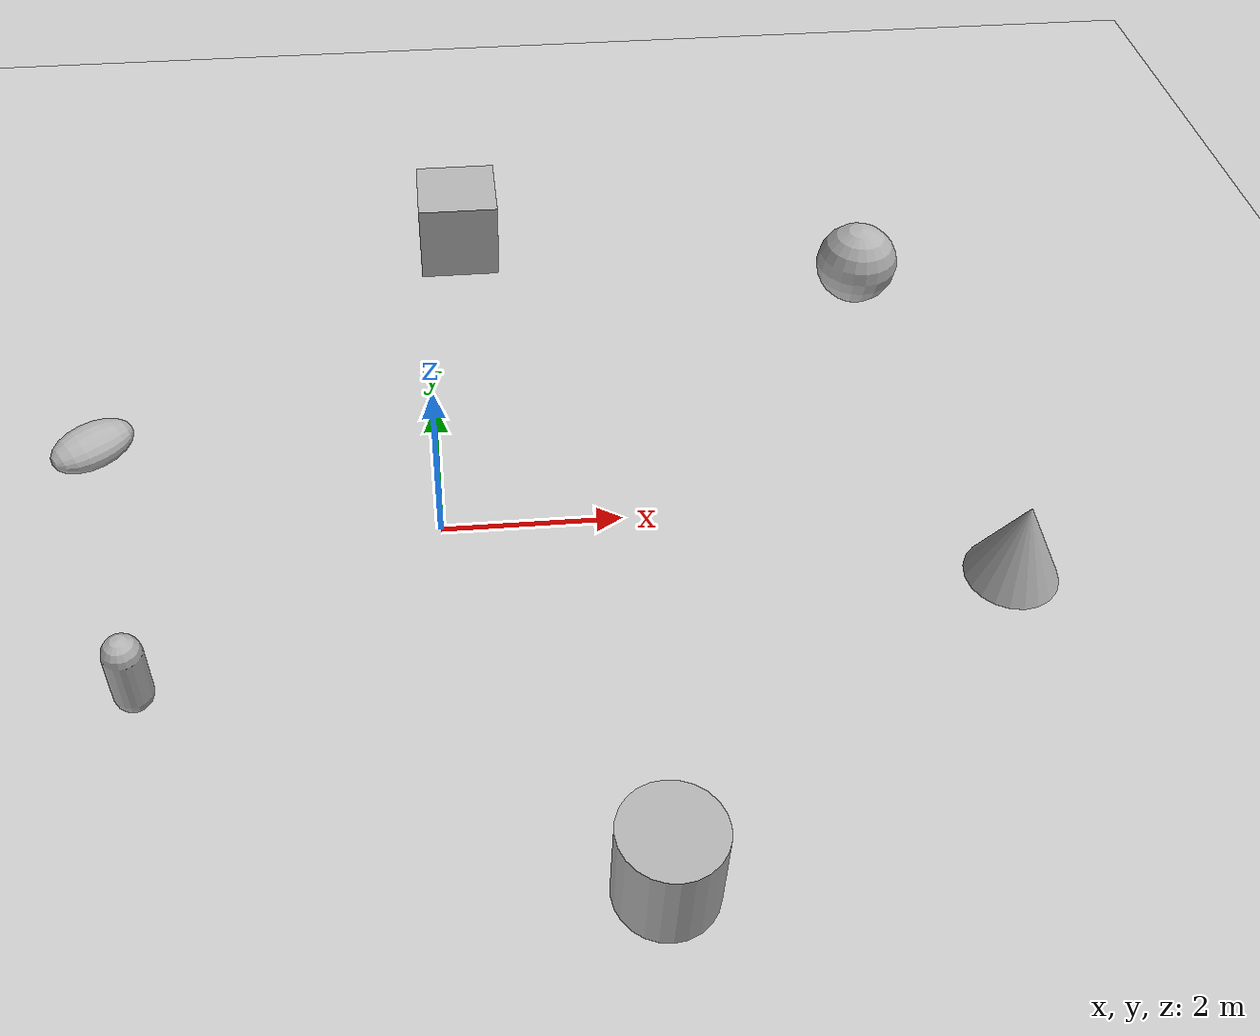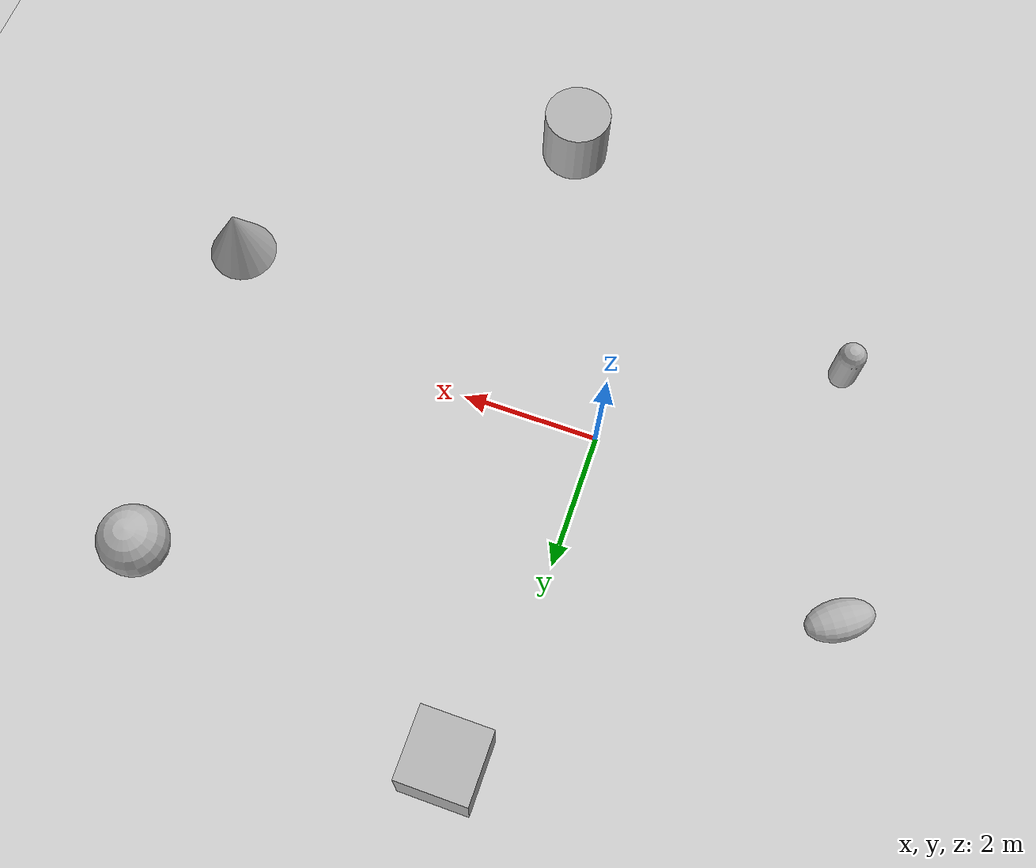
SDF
<sdf version='1.10'>
  <world name='empty'>
    <physics name='1ms' type='ignored'>
      <max_step_size>0.001</max_step_size>
      <real_time_factor>1</real_time_factor>
      <real_time_update_rate>1000</real_time_update_rate>
    </physics>
    <plugin name='gz::sim::systems::Physics' filename='gz-sim-physics-system'/>
    <plugin name='gz::sim::systems::UserCommands' filename='gz-sim-user-commands-system'/>
    <plugin name='gz::sim::systems::SceneBroadcaster' filename='gz-sim-scene-broadcaster-system'/>
    <plugin name='gz::sim::systems::Contact' filename='gz-sim-contact-system'/>
    <plugin name='gz::sim::systems::Sensors' filename='gz-sim-sensors-system'/>
    <gravity>0 0 -9.8000000000000007</gravity>
    <magnetic_field>5.5644999999999998e-06 2.2875799999999999e-05 -4.2388400000000002e-05</magnetic_field>
    <atmosphere type='adiabatic'/>
    <scene>
      <ambient>0.400000006 0.400000006 0.400000006 1</ambient>
      <background>0.699999988 0.699999988 0.699999988 1</background>
      <shadows>true</shadows>
    </scene>
    <model name='ground_plane'>
      <static>true</static>
      <link name='link'>
        <collision name='collision'>
          <geometry>
            <plane>
              <normal>0 0 1</normal>
              <size>100 100</size>
            </plane>
          </geometry>
          <surface>
            <friction>
              <ode/>
            </friction>
            <bounce/>
            <contact/>
          </surface>
        </collision>
        <visual name='visual'>
          <geometry>
            <plane>
              <normal>0 0 1</normal>
              <size>100 100</size>
            </plane>
          </geometry>
          <material>
            <ambient>0.800000012 0.800000012 0.800000012 1</ambient>
            <diffuse>0.800000012 0.800000012 0.800000012 1</diffuse>
            <specular>0.800000012 0.800000012 0.800000012 1</specular>
          </material>
        </visual>
        <pose>0 0 0 0 0 0</pose>
        <inertial>
          <pose>0 0 0 0 0 0</pose>
          <mass>1</mass>
          <inertia>
            <ixx>1</ixx>
            <ixy>0</ixy>
            <ixz>0</ixz>
            <iyy>1</iyy>
            <iyz>0</iyz>
            <izz>1</izz>
          </inertia>
        </inertial>
        <enable_wind>false</enable_wind>
      </link>
      <pose>0 0 0 0 0 0</pose>
      <self_collide>false</self_collide>
    </model>
    <model name='box'>
      <pose>0.43365232834418155 5.0428849047648638 0.49999999990199806 6.2287739151293738e-22 9.3279666454713669e-22 -3.6315533669320137e-22</pose>
      <link name='box_link'>
        <inertial>
          <inertia>
            <ixx>0.16666</ixx>
            <ixy>0</ixy>
            <ixz>0</ixz>
            <iyy>0.16666</iyy>
            <iyz>0</iyz>
            <izz>0.16666</izz>
          </inertia>
          <mass>1</mass>
          <pose>0 0 0 0 0 0</pose>
        </inertial>
        <collision name='box_collision'>
          <geometry>
            <box>
              <size>1 1 1</size>
            </box>
          </geometry>
          <surface>
            <friction>
              <ode/>
            </friction>
            <bounce/>
            <contact/>
          </surface>
        </collision>
        <visual name='box_visual'>
          <geometry>
            <box>
              <size>1 1 1</size>
            </box>
          </geometry>
          <material>
            <ambient>0.300000012 0.300000012 0.300000012 1</ambient>
            <diffuse>0.699999988 0.699999988 0.699999988 1</diffuse>
            <specular>1 1 1 1</specular>
          </material>
        </visual>
        <pose>0 0 0 0 0 0</pose>
        <enable_wind>false</enable_wind>
      </link>
      <static>false</static>
      <self_collide>false</self_collide>
    </model>
    <model name='sphere'>
      <pose>5.4309635570294734 3.7077687914322626 0.499999999902001 0 0 0</pose>
      <link name='sphere_link'>
        <inertial>
          <inertia>
            <ixx>0.10000000000000001</ixx>
            <ixy>0</ixy>
            <ixz>0</ixz>
            <iyy>0.10000000000000001</iyy>
            <iyz>0</iyz>
            <izz>0.10000000000000001</izz>
          </inertia>
          <mass>1</mass>
          <pose>0 0 0 0 0 0</pose>
        </inertial>
        <collision name='sphere_collision'>
          <geometry>
            <sphere>
              <radius>0.5</radius>
            </sphere>
          </geometry>
          <surface>
            <friction>
              <ode/>
            </friction>
            <bounce/>
            <contact/>
          </surface>
        </collision>
        <visual name='sphere_visual'>
          <geometry>
            <sphere>
              <radius>0.5</radius>
            </sphere>
          </geometry>
          <material>
            <ambient>0.300000012 0.300000012 0.300000012 1</ambient>
            <diffuse>0.699999988 0.699999988 0.699999988 1</diffuse>
            <specular>1 1 1 1</specular>
          </material>
        </visual>
        <pose>0 0 0 0 0 0</pose>
        <enable_wind>false</enable_wind>
      </link>
      <static>false</static>
      <self_collide>false</self_collide>
    </model>
    <model name='cone'>
      <pose>6.0073270366313736 -1.1554140779272271 0.49999999993296756 5.2543814717421522e-17 -7.713284103989973e-10 2.5230230910124188e-23</pose>
      <link name='cone_link'>
        <inertial>
          <inertia>
            <ixx>0.074999999999999997</ixx>
            <ixy>0</ixy>
            <ixz>0</ixz>
            <iyy>0.074999999999999997</iyy>
            <iyz>0</iyz>
            <izz>0.074999999999999997</izz>
          </inertia>
          <mass>1</mass>
          <pose>0 0 0 0 0 0</pose>
        </inertial>
        <collision name='cone_collision'>
          <geometry>
            <cone>
              <radius>0.5</radius>
              <length>1</length>
            </cone>
          </geometry>
          <surface>
            <friction>
              <ode/>
            </friction>
            <bounce/>
            <contact/>
          </surface>
        </collision>
        <visual name='cone_visual'>
          <geometry>
            <cone>
              <radius>0.5</radius>
              <length>1</length>
            </cone>
          </geometry>
          <material>
            <ambient>0.300000012 0.300000012 0.300000012 1</ambient>
            <diffuse>0.699999988 0.699999988 0.699999988 1</diffuse>
            <specular>1 1 1 1</specular>
          </material>
        </visual>
        <pose>0 0 0 0 0 0</pose>
        <enable_wind>false</enable_wind>
      </link>
      <static>false</static>
      <self_collide>false</self_collide>
    </model>
    <model name='cylinder'>
      <pose>1.8084436894808462 -4.5393585248927213 0.49999942638036005 2.3989330235997423e-19 5.1035571738398796e-19 1.6388646969410687e-21</pose>
      <link name='cylinder_link'>
        <inertial>
          <inertia>
            <ixx>0.14580000000000001</ixx>
            <ixy>0</ixy>
            <ixz>0</ixz>
            <iyy>0.14580000000000001</iyy>
            <iyz>0</iyz>
            <izz>0.125</izz>
          </inertia>
          <mass>1</mass>
          <pose>0 0 0 0 0 0</pose>
        </inertial>
        <collision name='cylinder_collision'>
          <geometry>
            <cylinder>
              <radius>0.5</radius>
              <length>1</length>
            </cylinder>
          </geometry>
          <surface>
            <friction>
              <ode/>
            </friction>
            <bounce/>
            <contact/>
          </surface>
        </collision>
        <visual name='cylinder_visual'>
          <geometry>
            <cylinder>
              <radius>0.5</radius>
              <length>1</length>
            </cylinder>
          </geometry>
          <material>
            <ambient>0.300000012 0.300000012 0.300000012 1</ambient>
            <diffuse>0.699999988 0.699999988 0.699999988 1</diffuse>
            <specular>1 1 1 1</specular>
          </material>
        </visual>
        <pose>0 0 0 0 0 0</pose>
        <enable_wind>false</enable_wind>
      </link>
      <static>false</static>
      <self_collide>false</self_collide>
    </model>
    <model name='capsule'>
      <pose>-3.0673327295938018 -2.0865702779589528 0.499999999902001 0 0 0</pose>
      <link name='capsule_link'>
        <inertial>
          <inertia>
            <ixx>0.074153999999999998</ixx>
            <ixy>0</ixy>
            <ixz>0</ixz>
            <iyy>0.074153999999999998</iyy>
            <iyz>0</iyz>
            <izz>0.018769000000000001</izz>
          </inertia>
          <mass>1</mass>
          <pose>0 0 0 0 0 0</pose>
        </inertial>
        <collision name='capsule_collision'>
          <geometry>
            <capsule>
              <radius>0.20000000000000001</radius>
              <length>0.59999999999999998</length>
            </capsule>
          </geometry>
          <surface>
            <friction>
              <ode/>
            </friction>
            <bounce/>
            <contact/>
          </surface>
        </collision>
        <visual name='capsule_visual'>
          <geometry>
            <capsule>
              <radius>0.20000000000000001</radius>
              <length>0.59999999999999998</length>
            </capsule>
          </geometry>
          <material>
            <ambient>0.300000012 0.300000012 0.300000012 1</ambient>
            <diffuse>0.699999988 0.699999988 0.699999988 1</diffuse>
            <specular>1 1 1 1</specular>
          </material>
        </visual>
        <pose>0 0 0 0 0 0</pose>
        <enable_wind>false</enable_wind>
      </link>
      <static>false</static>
      <self_collide>false</self_collide>
    </model>
    <model name='ellipsoid'>
      <pose>-3.907207413624235 1.4740789565959711 0.1866684673579399 1.5707963031312056 -1.3774889890299611 -0.96294926403384551</pose>
      <link name='ellipsoid_link'>
        <inertial>
          <inertia>
            <ixx>0.068000000000000005</ixx>
            <ixy>0</ixy>
            <ixz>0</ixz>
            <iyy>0.058000000000000003</iyy>
            <iyz>0</iyz>
            <izz>0.025999999999999999</izz>
          </inertia>
          <mass>1</mass>
          <pose>0 0 0 0 0 0</pose>
        </inertial>
        <collision name='ellipsoid_collision'>
          <geometry>
            <ellipsoid>
              <radii>0.20000000000000001 0.29999999999999999 0.5</radii>
            </ellipsoid>
          </geometry>
          <surface>
            <friction>
              <ode/>
            </friction>
            <bounce/>
            <contact/>
          </surface>
        </collision>
        <visual name='ellipsoid_visual'>
          <geometry>
            <ellipsoid>
              <radii>0.20000000000000001 0.29999999999999999 0.5</radii>
            </ellipsoid>
          </geometry>
          <material>
            <ambient>0.300000012 0.300000012 0.300000012 1</ambient>
            <diffuse>0.699999988 0.699999988 0.699999988 1</diffuse>
            <specular>1 1 1 1</specular>
          </material>
        </visual>
        <pose>0 0 0 0 0 0</pose>
        <enable_wind>false</enable_wind>
      </link>
      <static>false</static>
      <self_collide>false</self_collide>
    </model>
    <light name='sun' type='directional'>
      <pose>0 0 10 0 0 0</pose>
      <cast_shadows>true</cast_shadows>
      <intensity>1</intensity>
      <direction>-0.5 0.10000000000000001 -0.90000000000000002</direction>
      <diffuse>0.800000012 0.800000012 0.800000012 1</diffuse>
      <specular>0.200000003 0.200000003 0.200000003 1</specular>
      <attenuation>
        <range>1000</range>
        <linear>0.01</linear>
        <constant>0.90000000000000002</constant>
        <quadratic>0.001</quadratic>
      </attenuation>
      <spot>
        <inner_angle>0</inner_angle>
        <outer_angle>0</outer_angle>
        <falloff>0</falloff>
      </spot>
    </light>
  </world>
</sdf>
